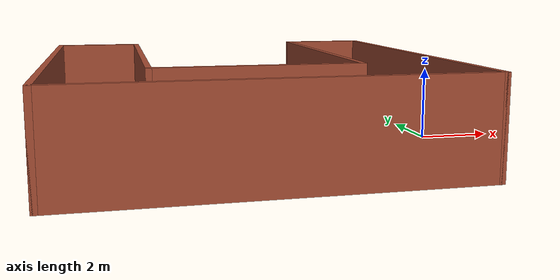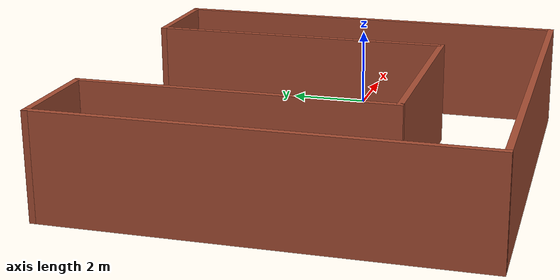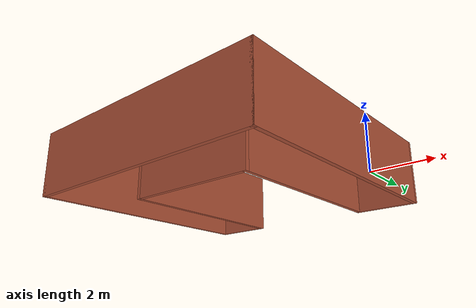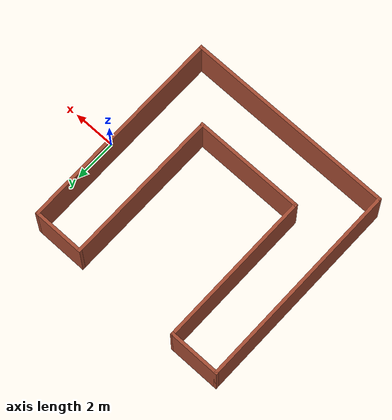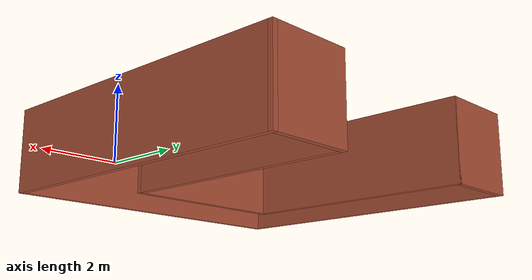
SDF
<?xml version='1.0'?>
<sdf version='1.6'>
  <model name='Oficina'>
    <pose frame=''>-5.42029 -0.188448 0 0 -0 0</pose>
    <link name='Wall_10'>
      <collision name='Wall_10_Collision'>
        <geometry>
          <box>
            <size>10 0.15 2.5</size>
          </box>
        </geometry>
        <pose frame=''>0 0 1.25 0 -0 0</pose>
      </collision>
      <visual name='Wall_10_Visual'>
        <pose frame=''>0 0 1.25 0 -0 0</pose>
        <geometry>
          <box>
            <size>10 0.15 2.5</size>
          </box>
        </geometry>
        <material>
          <script>
            <uri>file://media/materials/scripts/gazebo.material</uri>
            <name>Gazebo/Bricks</name>
          </script>
          <ambient>1 1 1 1</ambient>
        </material>
        <meta>
          <layer>0</layer>
        </meta>
      </visual>
      <pose frame=''>-4.925 -0 0 0 -0 -1.5708</pose>
    </link>
    <link name='Wall_12'>
      <collision name='Wall_12_Collision'>
        <geometry>
          <box>
            <size>10 0.15 2.5</size>
          </box>
        </geometry>
        <pose frame=''>0 0 1.25 0 -0 0</pose>
      </collision>
      <visual name='Wall_12_Visual'>
        <pose frame=''>0 0 1.25 0 -0 0</pose>
        <geometry>
          <box>
            <size>10 0.15 2.5</size>
          </box>
        </geometry>
        <material>
          <script>
            <uri>file://media/materials/scripts/gazebo.material</uri>
            <name>Gazebo/Bricks</name>
          </script>
          <ambient>1 1 1 1</ambient>
        </material>
        <meta>
          <layer>0</layer>
        </meta>
      </visual>
      <pose frame=''>0 -4.925 0 0 -0 0</pose>
    </link>
    <link name='Wall_14'>
      <collision name='Wall_14_Collision'>
        <geometry>
          <box>
            <size>10 0.15 2.5</size>
          </box>
        </geometry>
        <pose frame=''>0 0 1.25 0 -0 0</pose>
      </collision>
      <visual name='Wall_14_Visual'>
        <pose frame=''>0 0 1.25 0 -0 0</pose>
        <geometry>
          <box>
            <size>10 0.15 2.5</size>
          </box>
        </geometry>
        <material>
          <script>
            <uri>file://media/materials/scripts/gazebo.material</uri>
            <name>Gazebo/Bricks</name>
          </script>
          <ambient>1 1 1 1</ambient>
        </material>
        <meta>
          <layer>0</layer>
        </meta>
      </visual>
      <pose frame=''>4.925 -0 0 0 -0 1.5708</pose>
    </link>
    <link name='Wall_19'>
      <collision name='Wall_19_Collision'>
        <geometry>
          <box>
            <size>2.5 0.15 2.5</size>
          </box>
        </geometry>
        <pose frame=''>0 0 1.25 0 -0 0</pose>
      </collision>
      <visual name='Wall_19_Visual'>
        <pose frame=''>0 0 1.25 0 -0 0</pose>
        <geometry>
          <box>
            <size>2.5 0.15 2.5</size>
          </box>
        </geometry>
        <material>
          <script>
            <uri>file://media/materials/scripts/gazebo.material</uri>
            <name>Gazebo/Bricks</name>
          </script>
          <ambient>1 1 1 1</ambient>
        </material>
        <meta>
          <layer>0</layer>
        </meta>
      </visual>
      <pose frame=''>-3.75 4.925 0 0 -0 0</pose>
    </link>
    <link name='Wall_20'>
      <collision name='Wall_20_Collision'>
        <geometry>
          <box>
            <size>7.5 0.15 2.5</size>
          </box>
        </geometry>
        <pose frame=''>0 0 1.25 0 -0 0</pose>
      </collision>
      <visual name='Wall_20_Visual'>
        <pose frame=''>0 0 1.25 0 -0 0</pose>
        <geometry>
          <box>
            <size>7.5 0.15 2.5</size>
          </box>
        </geometry>
        <material>
          <script>
            <uri>file://media/materials/scripts/gazebo.material</uri>
            <name>Gazebo/Bricks</name>
          </script>
          <ambient>1 1 1 1</ambient>
        </material>
        <meta>
          <layer>0</layer>
        </meta>
      </visual>
      <pose frame=''>-2.575 1.25 0 0 -0 -1.5708</pose>
    </link>
    <link name='Wall_23'>
      <collision name='Wall_23_Collision'>
        <geometry>
          <box>
            <size>2.5 0.15 2.5</size>
          </box>
        </geometry>
        <pose frame=''>0 0 1.25 0 -0 0</pose>
      </collision>
      <visual name='Wall_23_Visual'>
        <pose frame=''>0 0 1.25 0 -0 0</pose>
        <geometry>
          <box>
            <size>2.5 0.15 2.5</size>
          </box>
        </geometry>
        <material>
          <script>
            <uri>file://media/materials/scripts/gazebo.material</uri>
            <name>Gazebo/Bricks</name>
          </script>
          <ambient>1 1 1 1</ambient>
        </material>
        <meta>
          <layer>0</layer>
        </meta>
      </visual>
      <pose frame=''>3.75 4.925 0 0 -0 3.14159</pose>
    </link>
    <link name='Wall_24'>
      <collision name='Wall_24_Collision'>
        <geometry>
          <box>
            <size>7.5 0.15 2.5</size>
          </box>
        </geometry>
        <pose frame=''>0 0 1.25 0 -0 0</pose>
      </collision>
      <visual name='Wall_24_Visual'>
        <pose frame=''>0 0 1.25 0 -0 0</pose>
        <geometry>
          <box>
            <size>7.5 0.15 2.5</size>
          </box>
        </geometry>
        <material>
          <script>
            <uri>file://media/materials/scripts/gazebo.material</uri>
            <name>Gazebo/Bricks</name>
          </script>
          <ambient>1 1 1 1</ambient>
        </material>
        <meta>
          <layer>0</layer>
        </meta>
      </visual>
      <pose frame=''>2.575 1.25 0 0 -0 -1.5708</pose>
    </link>
    <link name='Wall_25'>
      <collision name='Wall_25_Collision'>
        <geometry>
          <box>
            <size>5.3 0.15 2.5</size>
          </box>
        </geometry>
        <pose frame=''>0 0 1.25 0 -0 0</pose>
      </collision>
      <visual name='Wall_25_Visual'>
        <pose frame=''>0 0 1.25 0 -0 0</pose>
        <geometry>
          <box>
            <size>5.3 0.15 2.5</size>
          </box>
        </geometry>
        <material>
          <script>
            <uri>file://media/materials/scripts/gazebo.material</uri>
            <name>Gazebo/Bricks</name>
          </script>
          <ambient>1 1 1 1</ambient>
        </material>
        <meta>
          <layer>0</layer>
        </meta>
      </visual>
      <pose frame=''>0 -2.425 0 0 -0 3.14159</pose>
    </link>
    <static>1</static>
  </model>
</sdf>
